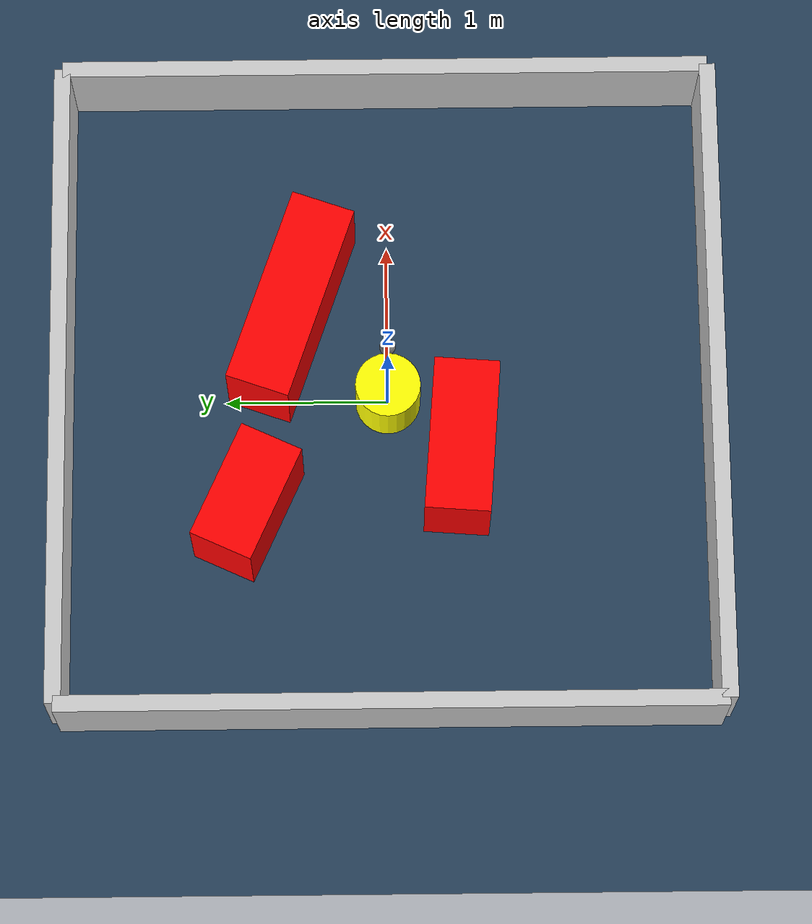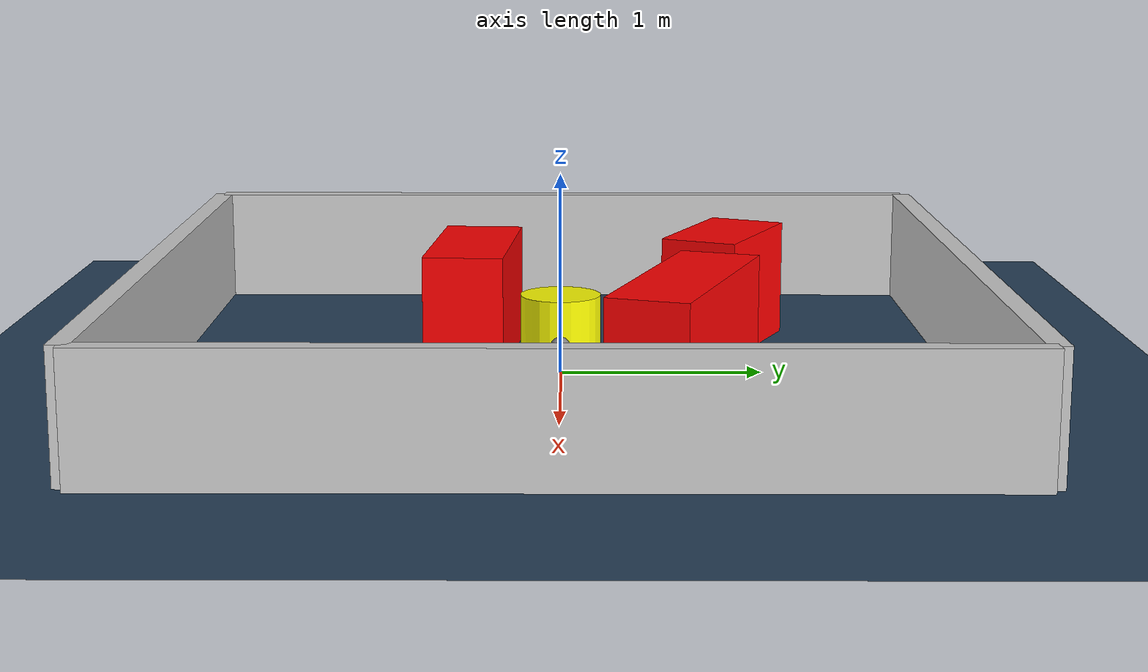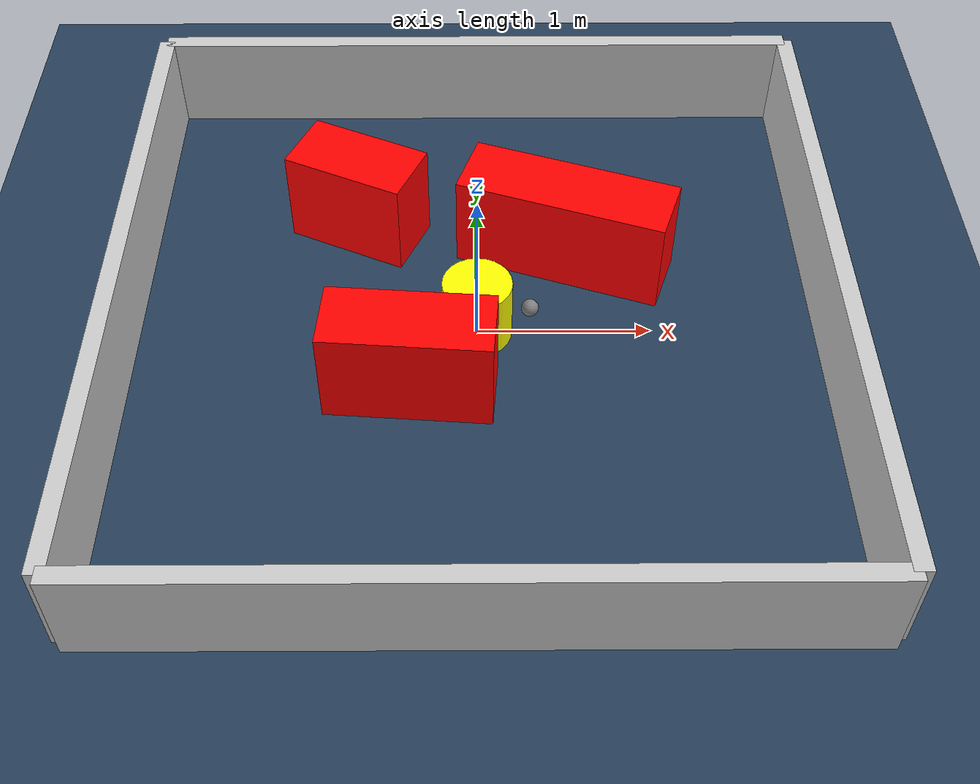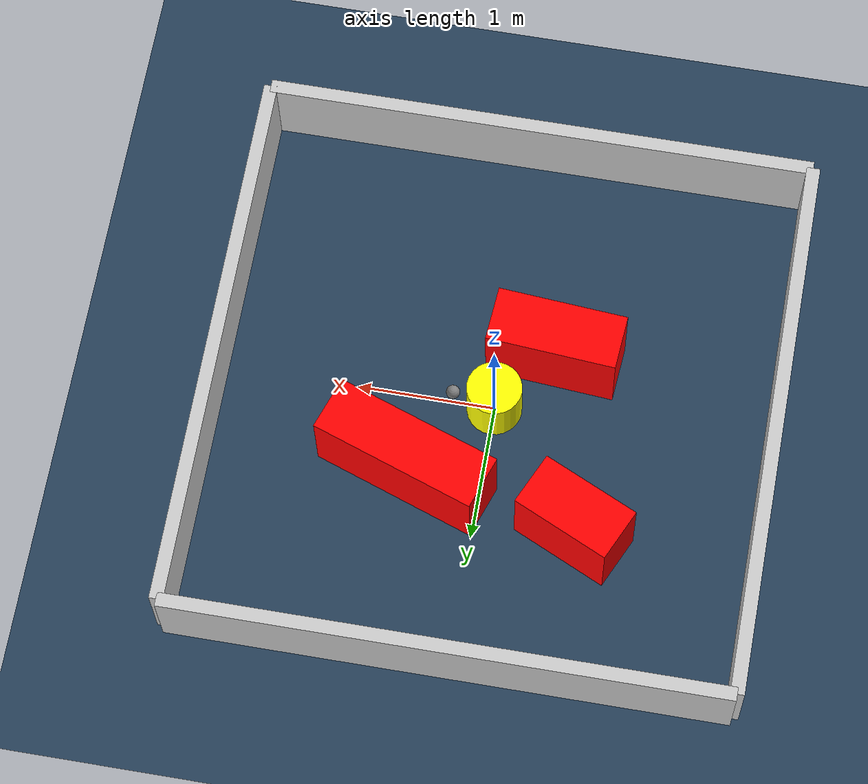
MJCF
<?xml version="1.0" ?>
<mujoco model="generated_environment">
  <option timestep="0.01" integrator="RK4" cone="elliptic"/>
  <default>
    <geom density="1"/>
  </default>
  <asset>
    <texture builtin="gradient" height="3072" rgb1="0.3 0.5 0.7" rgb2="0 0 0" type="skybox" width="512"/>
    <texture builtin="checker" height="300" mark="edge" markrgb="0.8 0.8 0.8" name="groundplane" rgb1="0.2 0.3 0.4" rgb2="0.1 0.2 0.3" type="2d" width="300"/>
    <material name="groundplane" reflectance="0.2" texrepeat="5 5" texture="groundplane" texuniform="true"/>
    <material name="robot" rgba="0.0 1.0 0.0 1"/>
  </asset>
  <worldbody>
    <light dir="0 0 -1" directional="true" pos="0 0 1.5"/>
    <geom condim="4" friction="1.0 0.005 0.001" material="groundplane" name="floor" size="0 0 0.05" type="plane"/>
    <body name="walls">
      <geom name="wall_1" condim="4" pos="-2.0 0.0 0.3" rgba="0.800000011920929 0.800000011920929 0.800000011920929 1.0" size="0.05 2.0 0.3" type="box"/>
      <geom name="wall_2" condim="4" pos="2.0 0.0 0.3" rgba="0.800000011920929 0.800000011920929 0.800000011920929 1.0" size="0.05 2.0 0.3" type="box"/>
      <geom name="wall_3" condim="4" pos="0.0 -2.0 0.3" rgba="0.800000011920929 0.800000011920929 0.800000011920929 1.0" size="2.0 0.05 0.3" type="box"/>
      <geom name="wall_4" condim="4" pos="0.0 2.0 0.3" rgba="0.800000011920929 0.800000011920929 0.800000011920929 1.0" size="2.0 0.05 0.3" type="box"/>
    </body>
    <body name="robot">
      <joint name="joint_x" type="slide" pos="0 0 0" axis="1 0 0"/>
      <joint name="joint_y" type="slide" pos="0 0 0" axis="0 1 0"/>
      <geom name="robot" type="sphere" pos="0.3 0.0 0.2" size="0.05" mass="5." friction="1.0 0.005 0.0001" condim="4" rgba="0.5 0.5 0.5 1.0"/>
      <site name="sensor_ball"/>
    </body>
    <body name="obstacle_movable_1">
      <geom name="obstacle_movable_1" condim="4" pos="0.0 0.0 0.2" euler="0 0 0.0" friction="1.0 0.005 0.001" rgba="1.0 1.0 0.0 1.0" size="0.2 0.2 0.0" type="cylinder" mass="0.1"/>
      <joint type="free"/>
    </body>
    <body name="obstacle_2_static">
      <geom name="obstacle_2_static" condim="4" pos="-0.3714490684258791 -0.4470483001220886 0.3" euler="0 0 175.58726997988927" friction="1.0 0.005 0.001" rgba="1 0 0 1" size="0.4710251584274616 0.2 0.3" type="box"/>
    </body>
    <body name="obstacle_3_static">
      <geom name="obstacle_3_static" condim="4" pos="0.5305785953195474 0.5893499483899227 0.3" euler="0 0 340.75586180832994" friction="1.0 0.005 0.001" rgba="1 0 0 1" size="0.6214821212597669 0.2 0.3" type="box"/>
    </body>
    <body name="obstacle_4_static">
      <geom name="obstacle_4_static" condim="4" pos="-0.7141826989797332 0.8582496754842517 0.3" euler="0 0 335.3797378254264" friction="1.0 0.005 0.001" rgba="1 0 0 1" size="0.3718550239792559 0.2 0.3" type="box"/>
    </body>
  </worldbody>
  <actuator>
    <motor name="actuator_x" joint="joint_x" gear="1" ctrlrange="-1 1"/>
    <motor name="actuator_y" joint="joint_y" gear="1" ctrlrange="-1 1"/>
  </actuator>
</mujoco>
